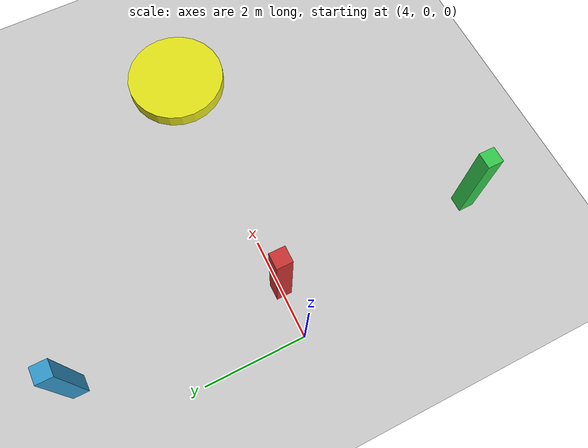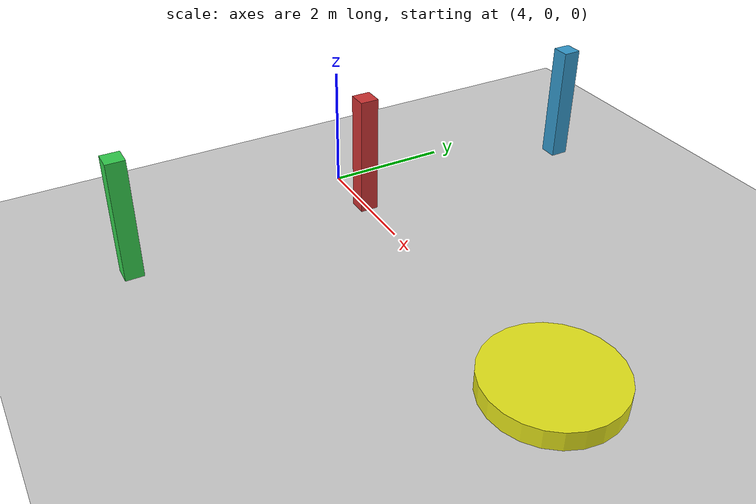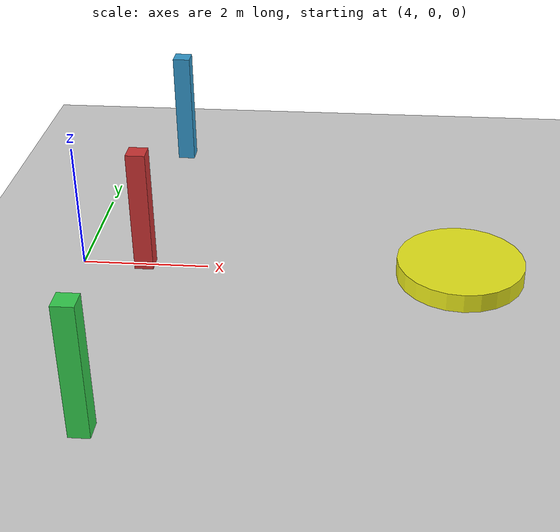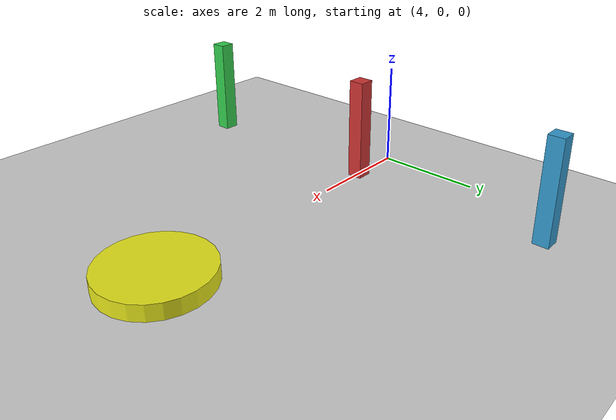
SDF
<?xml version="1.0" ?>
<sdf version="1.6">
  <world name="obstacle_course">

    <include>
      <uri>model://sun</uri>
    </include>

    <include>
      <uri>model://ground_plane</uri>
    </include>

    <physics name="default_physics" default="0" type="ode">
      <max_step_size>0.004</max_step_size>
      <real_time_factor>1</real_time_factor>
      <real_time_update_rate>250</real_time_update_rate>
    </physics>

    <!-- Three simple box "pylons" the drone can practice flying around -->
    <model name="pylon_1">
      <static>true</static>
      <pose>5 0 1 0 0 0</pose>
      <link name="link">
        <visual name="visual">
          <geometry><box><size>0.3 0.3 2</size></box></geometry>
          <material><ambient>0.8 0.2 0.2 1</ambient></material>
        </visual>
        <collision name="collision">
          <geometry><box><size>0.3 0.3 2</size></box></geometry>
        </collision>
      </link>
    </model>

    <model name="pylon_2">
      <static>true</static>
      <pose>5 4 1 0 0 0</pose>
      <link name="link">
        <visual name="visual">
          <geometry><box><size>0.3 0.3 2</size></box></geometry>
          <material><ambient>0.2 0.6 0.8 1</ambient></material>
        </visual>
        <collision name="collision">
          <geometry><box><size>0.3 0.3 2</size></box></geometry>
        </collision>
      </link>
    </model>

    <model name="pylon_3">
      <static>true</static>
      <pose>5 -4 1 0 0 0</pose>
      <link name="link">
        <visual name="visual">
          <geometry><box><size>0.3 0.3 2</size></box></geometry>
          <material><ambient>0.2 0.8 0.3 1</ambient></material>
        </visual>
        <collision name="collision">
          <geometry><box><size>0.3 0.3 2</size></box></geometry>
        </collision>
      </link>
    </model>

    <!-- A raised landing platform to practice precision landings -->
    <model name="landing_pad">
      <static>true</static>
      <pose>10 0 0.15 0 0 0</pose>
      <link name="link">
        <visual name="visual">
          <geometry><cylinder><radius>1.0</radius><length>0.3</length></cylinder></geometry>
          <material><ambient>0.9 0.9 0.1 1</ambient></material>
        </visual>
        <collision name="collision">
          <geometry><cylinder><radius>1.0</radius><length>0.3</length></cylinder></geometry>
        </collision>
      </link>
    </model>

  </world>
</sdf>
